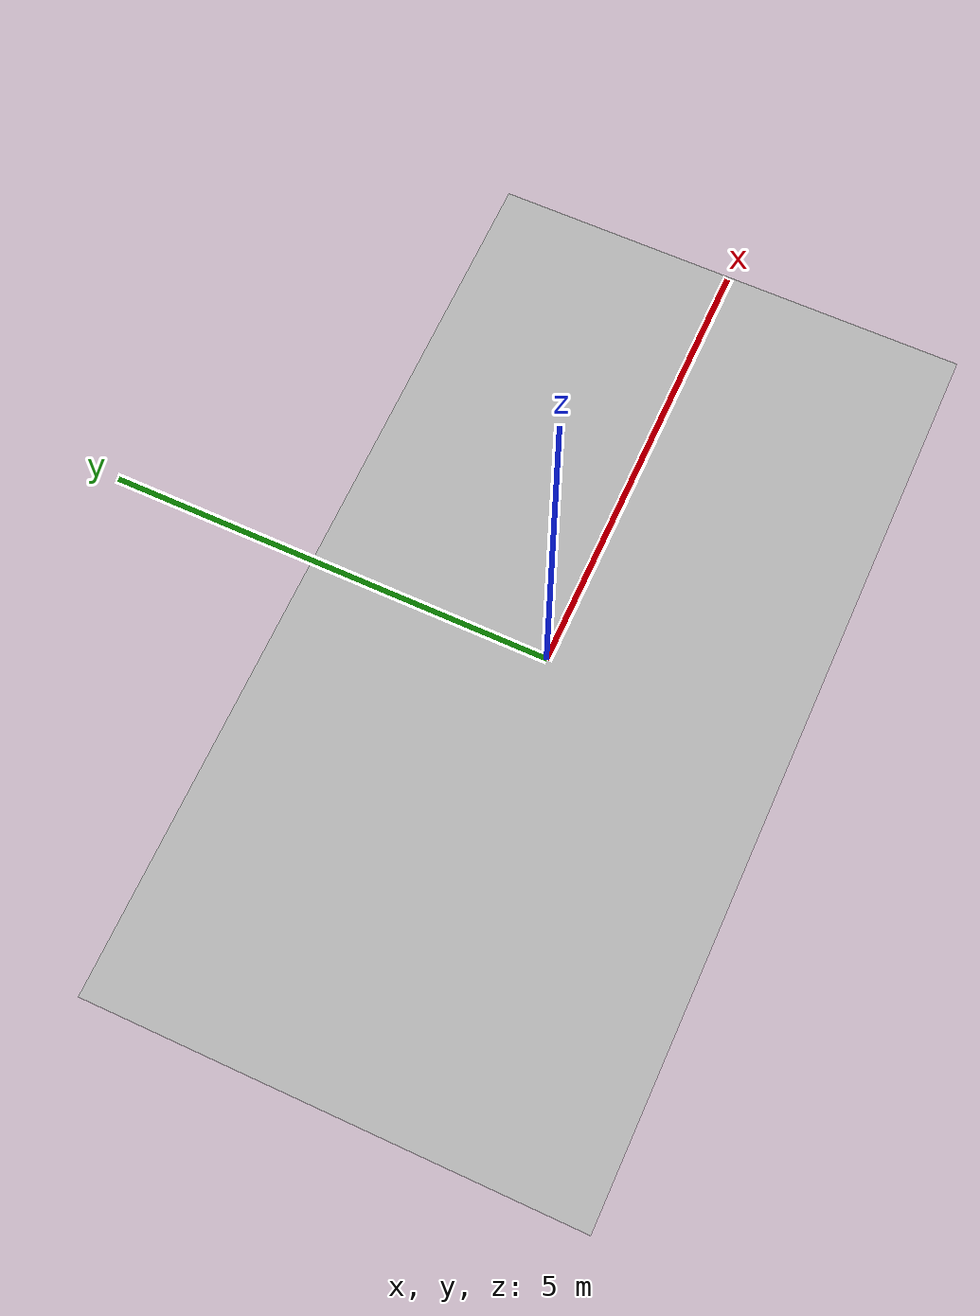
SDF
<?xml version='1.0'?>
<sdf version='1.7'>
  <model name='Lab_Floor'>
    <link name='link_0'>
      <inertial>
        <mass>1</mass>
        <inertia>
          <ixx>0.166667</ixx>
          <ixy>0</ixy>
          <ixz>0</ixz>
          <iyy>0.166667</iyy>
          <iyz>0</iyz>
          <izz>0.166667</izz>
        </inertia>
        <pose>0 0 0 0 -0 0</pose>
      </inertial>
      <pose>0 0 0 0 -0 0</pose>
      <gravity>1</gravity>
      <self_collide>0</self_collide>
      <kinematic>0</kinematic>
      <enable_wind>0</enable_wind>
      <visual name='visual'>
        <pose>0 0 0 0 -0 0</pose>
        <geometry>
          <mesh>
            <uri>model://BioRoboticsLab/meshes/Lab_Floor.dae</uri>
            <scale>1 1 1</scale>
          </mesh>
        </geometry>
        <material>
          <lighting>1</lighting>
          <shader type='pixel'/>
        </material>
        <transparency>0</transparency>
        <cast_shadows>1</cast_shadows>
      </visual>
    </link>
    <static>1</static>
    <allow_auto_disable>1</allow_auto_disable>
  </model>
</sdf>
